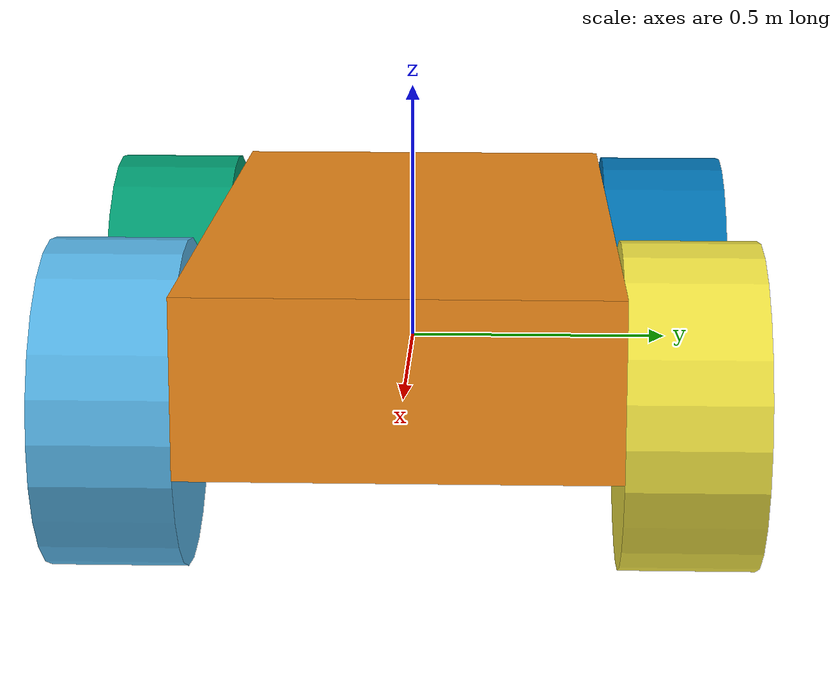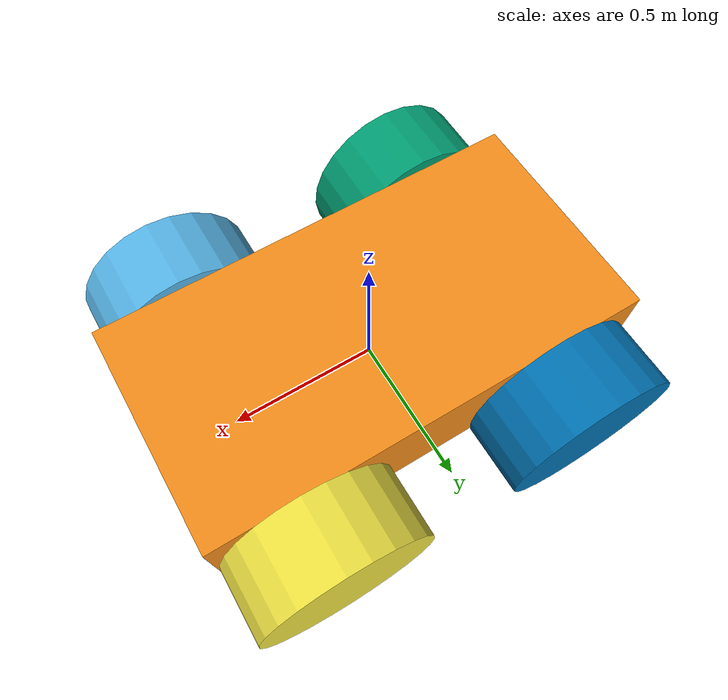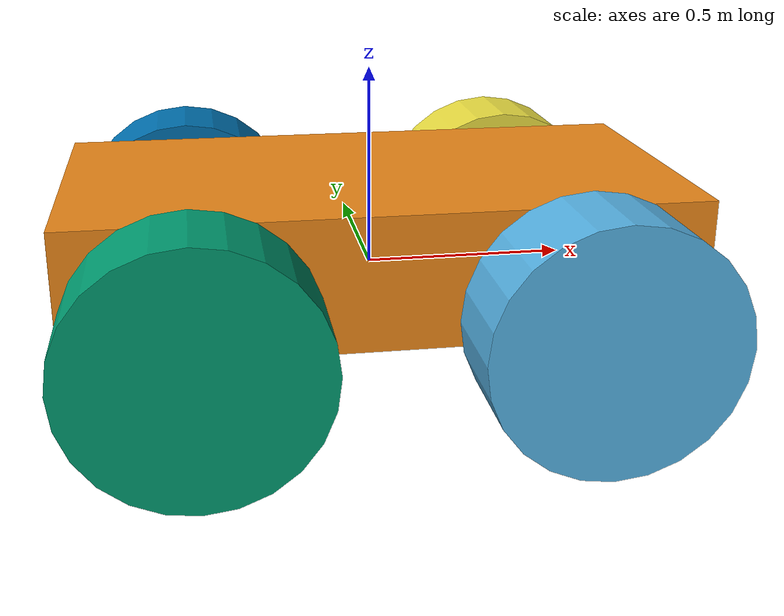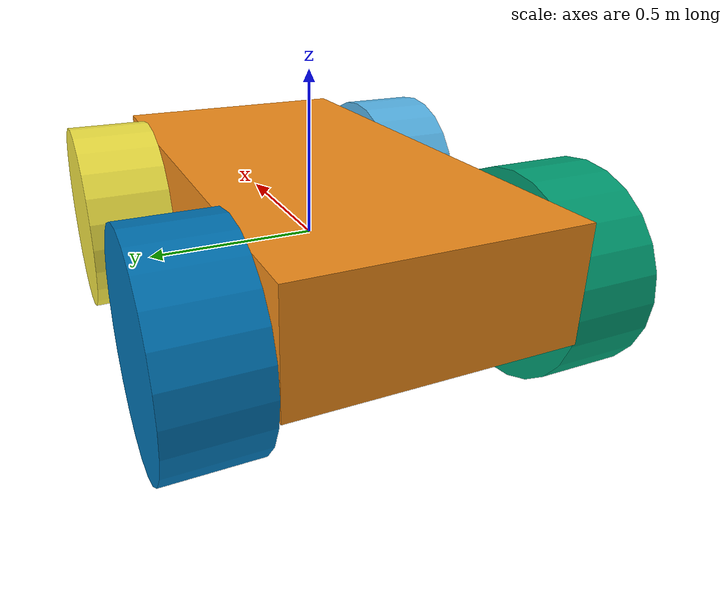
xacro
<?xml version="1.0" ?>
<robot name="rosrobot" xmlns:xacro="http://www.ros.org/wiki/xacro">

  <xacro:include filename="$(find rosrobot_description)/urdf/rosrobot.gazebo" />

  <link name="chassis">
    <inertial>
      <mass value="10.0"/>
      <origin rpy="0 0 0" xyz="0 0 0"/>
      <inertia ixx="0.0226297" ixy="0" ixz="0" iyy="0.075369" iyz="0" izz="0.0913111"/>
    </inertial>
    <collision name="chassis_collision">
      <origin rpy="0 0 0" xyz="0 0 0.08"/>
      <geometry>
        <box size="1.5062 0.77942 0.324543"/>
      </geometry>
    </collision>
    <visual name="chassis_visual">
      <origin rpy="0 0 0" xyz="0 0 0.08"/>
      <geometry>
        <box size="1.5062 0.77942 0.324543"/>
      </geometry>
    </visual>
  </link>

  <link name="front_left_wheel">
    <inertial>
      <mass value="5"/>
      <origin rpy="0 0 0" xyz="0 0 0"/>
      <inertia ixx="0.145833" ixy="0" ixz="0" iyy="0.145833" iyz="0" izz="0.125"/>
    </inertial>
    <collision name="front_left_wheel_collision">
      <origin rpy="0 0 0" xyz="0 0 0"/>
      <geometry>
        <cylinder length="0.25" radius="0.3"/>
      </geometry>
    </collision>
    <visual name="front_left_wheel_visual">
      <origin rpy="0 0 0" xyz="0 0 0"/>
      <geometry>
        <cylinder length="0.25" radius="0.3"/>
      </geometry>
    </visual>
  </link>

  <link name="back_left_wheel">
    <inertial>
      <mass value="5"/>
      <origin rpy="0 0 0" xyz="0 0 0"/>
      <inertia ixx="0.145833" ixy="0" ixz="0" iyy="0.145833" iyz="0" izz="0.125"/>
    </inertial>
    <collision name="back_left_wheel_collision">
      <origin rpy="0 0 0" xyz="0 0 0"/>
      <geometry>
        <cylinder length="0.25" radius="0.3"/>
      </geometry>
    </collision>
    <visual name="back_left_wheel_visual">
      <origin rpy="0 0 0" xyz="0 0 0"/>
      <geometry>
        <cylinder length="0.25" radius="0.3"/>
      </geometry>
    </visual>
  </link>

  <link name="front_right_wheel">
    <inertial>
      <mass value="5"/>
      <origin rpy="0 0 0" xyz="0 0 0"/>
      <inertia ixx="0.145833" ixy="0" ixz="0" iyy="0.145833" iyz="0" izz="0.125"/>
    </inertial>
    <collision name="front_right_wheel_collision">
      <origin rpy="0 0 0" xyz="0 0 0"/>
      <geometry>
        <cylinder length="0.25" radius="0.3"/>
      </geometry>
    </collision>
    <visual name="front_right_wheel_visual">
      <origin rpy="0 0 0" xyz="0 0 0"/>
      <geometry>
        <cylinder length="0.25" radius="0.3"/>
      </geometry>
    </visual>
  </link>

  <link name="back_right_wheel">
    <inertial>
      <mass value="5"/>
      <origin rpy="0 0 0" xyz="0 0 0"/>
      <inertia ixx="0.145833" ixy="0" ixz="0" iyy="0.145833" iyz="0" izz="0.125"/>
    </inertial>
    <collision name="back_right_wheel_collision">
      <origin rpy="0 0 0" xyz="0 0 0"/>
      <geometry>
        <cylinder length="0.25" radius="0.3"/>
      </geometry>
    </collision>
    <visual name="back_right_wheel_visual">
      <origin rpy="0 0 0" xyz="0 0 0"/>
      <geometry>
        <cylinder length="0.25" radius="0.3"/>
      </geometry>
    </visual>
  </link>

  <joint name="front_right_wheel_joint" type="revolute">
    <parent link="chassis"/>
    <child link="front_right_wheel"/>
    <origin rpy="1.5707 0 0" xyz="0.45309  0.51473 -0.02"/>
    <axis xyz="0 0 1"/>
    <limit effort="-1.0" lower="-1.79769e+308" upper="1.79769e+308" velocity="-1.0"/>
  </joint>

  <joint name="front_left_wheel_joint" type="revolute">
    <parent link="chassis"/>
    <child link="front_left_wheel"/>
    <origin rpy="1.5707 0 0" xyz="0.45309 -0.51473 -0.02"/>
    <axis xyz="0 0 1"/>
    <limit effort="-1.0" lower="-1.79769e+308" upper="1.79769e+308" velocity="-1.0"/>
  </joint>

  <joint name="back_left_wheel_joint" type="revolute">
    <parent link="chassis"/>
    <child link="back_left_wheel"/>
    <origin rpy="1.5707 0 0" xyz="-0.45309 -0.51473 -0.02"/>
    <axis xyz="0 0 1"/>
    <limit effort="-1.0" lower="-1.79769e+308" upper="1.79769e+308" velocity="-1.0"/>
  </joint>

  <joint name="back_right_wheel_joint" type="revolute">
    <parent link="chassis"/>
    <child link="back_right_wheel"/>
    <origin rpy="1.5707 0 0" xyz="-0.45309 0.51473 -0.02"/>
    <axis xyz="0 0 1"/>
    <limit effort="-1.0" lower="-1.79769e+308" upper="1.79769e+308" velocity="-1.0"/>
  </joint>

</robot>
